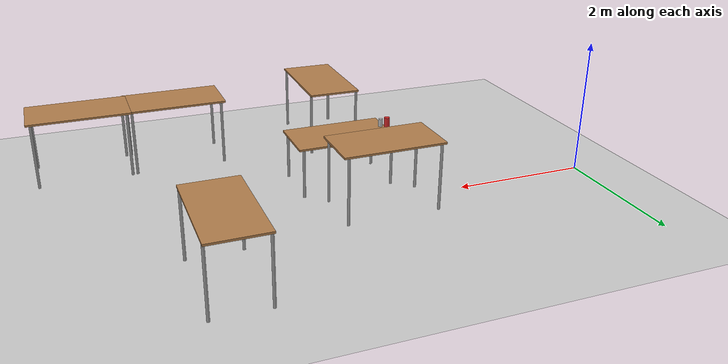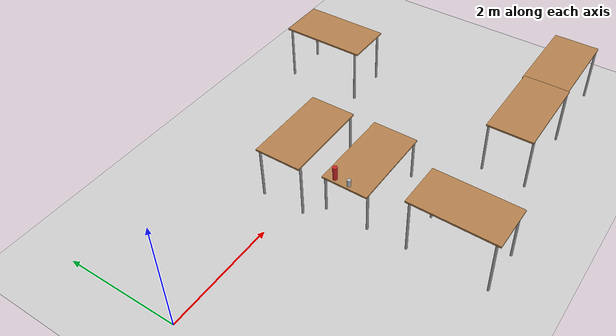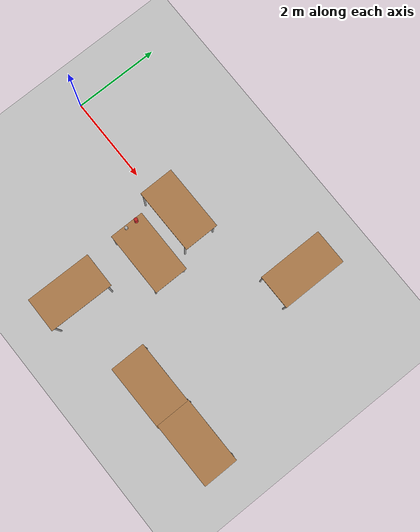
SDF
<sdf version="1.6">
 <world name="default">
  <model name="ground_plane">
   <static>1</static>
   <link name="link">
    <collision name="collision">
     <geometry><plane><normal>0 0 1</normal><size>100 100</size></plane></geometry>
     <surface><friction><ode><mu>100</mu><mu2>50</mu2></ode></friction></surface>
    </collision>
    <visual name="visual">
     <cast_shadows>0</cast_shadows>
     <geometry><plane><normal>0 0 1</normal><size>100 100</size></plane></geometry>
     <material>
      <script><uri>file://media/materials/scripts/gazebo.material</uri><name>Gazebo/Grey</name></script>
     </material>
    </visual>
   </link>
  </model>
  <model name="table_clone_0">
   <static>1</static>
   <link name="link">
    <collision name="surface">
     <pose>0 0 1 0 -0 0</pose>
     <geometry><box><size>1.5 0.8 0.03</size></box></geometry>
     <surface><friction><ode><mu>0.6</mu><mu2>0.6</mu2></ode></friction></surface>
    </collision>
    <visual name="visual1">
     <pose>0 0 1 0 -0 0</pose>
     <geometry><box><size>1.5 0.8 0.03</size></box></geometry>
     <material>
      <script><uri>file://media/materials/scripts/gazebo.material</uri><name>Gazebo/Wood</name></script>
     </material>
    </visual>
    <collision name="front_left_leg">
     <pose>0.68 0.38 0.5 0 -0 0</pose>
     <geometry><cylinder><radius>0.02</radius><length>1</length></cylinder></geometry>
    </collision>
    <visual name="front_left_leg">
     <pose>0.68 0.38 0.5 0 -0 0</pose>
     <geometry><cylinder><radius>0.02</radius><length>1</length></cylinder></geometry>
     <material>
      <script><uri>file://media/materials/scripts/gazebo.material</uri><name>Gazebo/Grey</name></script>
     </material>
    </visual>
    <collision name="front_right_leg">
     <pose>0.68 -0.38 0.5 0 -0 0</pose>
     <geometry><cylinder><radius>0.02</radius><length>1</length></cylinder></geometry>
    </collision>
    <visual name="front_right_leg">
     <pose>0.68 -0.38 0.5 0 -0 0</pose>
     <geometry><cylinder><radius>0.02</radius><length>1</length></cylinder></geometry>
     <material>
      <script><uri>file://media/materials/scripts/gazebo.material</uri><name>Gazebo/Grey</name></script>
     </material>
    </visual>
    <collision name="back_right_leg">
     <pose>-0.68 -0.38 0.5 0 -0 0</pose>
     <geometry><cylinder><radius>0.02</radius><length>1</length></cylinder></geometry>
    </collision>
    <visual name="back_right_leg">
     <pose>-0.68 -0.38 0.5 0 -0 0</pose>
     <geometry><cylinder><radius>0.02</radius><length>1</length></cylinder></geometry>
     <material>
      <script><uri>file://media/materials/scripts/gazebo.material</uri><name>Gazebo/Grey</name></script>
     </material>
    </visual>
    <collision name="back_left_leg">
     <pose>-0.68 0.38 0.5 0 -0 0</pose>
     <geometry><cylinder><radius>0.02</radius><length>1</length></cylinder></geometry>
    </collision>
    <visual name="back_left_leg">
     <pose>-0.68 0.38 0.5 0 -0 0</pose>
     <geometry><cylinder><radius>0.02</radius><length>1</length></cylinder></geometry>
     <material>
      <script><uri>file://media/materials/scripts/gazebo.material</uri><name>Gazebo/Grey</name></script>
     </material>
    </visual>
   </link>
   <pose>3.32196 0.119027 0 0 0 -3.13587</pose>
  </model>
  <model name="table_clone_0_clone">
   <static>1</static>
   <link name="link">
    <collision name="surface">
     <pose>0 0 1 0 -0 0</pose>
     <geometry><box><size>1.5 0.8 0.03</size></box></geometry>
     <surface><friction><ode><mu>0.6</mu><mu2>0.6</mu2></ode></friction></surface>
    </collision>
    <visual name="visual1">
     <pose>0 0 1 0 -0 0</pose>
     <geometry><box><size>1.5 0.8 0.03</size></box></geometry>
     <material>
      <script><uri>file://media/materials/scripts/gazebo.material</uri><name>Gazebo/Wood</name></script>
     </material>
    </visual>
    <collision name="front_left_leg">
     <pose>0.68 0.38 0.5 0 -0 0</pose>
     <geometry><cylinder><radius>0.02</radius><length>1</length></cylinder></geometry>
    </collision>
    <visual name="front_left_leg">
     <pose>0.68 0.38 0.5 0 -0 0</pose>
     <geometry><cylinder><radius>0.02</radius><length>1</length></cylinder></geometry>
     <material>
      <script><uri>file://media/materials/scripts/gazebo.material</uri><name>Gazebo/Grey</name></script>
     </material>
    </visual>
    <collision name="front_right_leg">
     <pose>0.68 -0.38 0.5 0 -0 0</pose>
     <geometry><cylinder><radius>0.02</radius><length>1</length></cylinder></geometry>
    </collision>
    <visual name="front_right_leg">
     <pose>0.68 -0.38 0.5 0 -0 0</pose>
     <geometry><cylinder><radius>0.02</radius><length>1</length></cylinder></geometry>
     <material>
      <script><uri>file://media/materials/scripts/gazebo.material</uri><name>Gazebo/Grey</name></script>
     </material>
    </visual>
    <collision name="back_right_leg">
     <pose>-0.68 -0.38 0.5 0 -0 0</pose>
     <geometry><cylinder><radius>0.02</radius><length>1</length></cylinder></geometry>
    </collision>
    <visual name="back_right_leg">
     <pose>-0.68 -0.38 0.5 0 -0 0</pose>
     <geometry><cylinder><radius>0.02</radius><length>1</length></cylinder></geometry>
     <material>
      <script><uri>file://media/materials/scripts/gazebo.material</uri><name>Gazebo/Grey</name></script>
     </material>
    </visual>
    <collision name="back_left_leg">
     <pose>-0.68 0.38 0.5 0 -0 0</pose>
     <geometry><cylinder><radius>0.02</radius><length>1</length></cylinder></geometry>
    </collision>
    <visual name="back_left_leg">
     <pose>-0.68 0.38 0.5 0 -0 0</pose>
     <geometry><cylinder><radius>0.02</radius><length>1</length></cylinder></geometry>
     <material>
      <script><uri>file://media/materials/scripts/gazebo.material</uri><name>Gazebo/Grey</name></script>
     </material>
    </visual>
   </link>
   <pose>5.85461 1.30553 0 0 -0 1.57373</pose>
  </model>
  <model name="table_clone_0_clone_0">
   <static>1</static>
   <link name="link">
    <collision name="surface">
     <pose>0 0 1 0 -0 0</pose>
     <geometry><box><size>1.5 0.8 0.03</size></box></geometry>
     <surface><friction><ode><mu>0.6</mu><mu2>0.6</mu2></ode></friction></surface>
    </collision>
    <visual name="visual1">
     <pose>0 0 1 0 -0 0</pose>
     <geometry><box><size>1.5 0.8 0.03</size></box></geometry>
     <material>
      <script><uri>file://media/materials/scripts/gazebo.material</uri><name>Gazebo/Wood</name></script>
     </material>
    </visual>
    <collision name="front_left_leg">
     <pose>0.68 0.38 0.5 0 -0 0</pose>
     <geometry><cylinder><radius>0.02</radius><length>1</length></cylinder></geometry>
    </collision>
    <visual name="front_left_leg">
     <pose>0.68 0.38 0.5 0 -0 0</pose>
     <geometry><cylinder><radius>0.02</radius><length>1</length></cylinder></geometry>
     <material>
      <script><uri>file://media/materials/scripts/gazebo.material</uri><name>Gazebo/Grey</name></script>
     </material>
    </visual>
    <collision name="front_right_leg">
     <pose>0.68 -0.38 0.5 0 -0 0</pose>
     <geometry><cylinder><radius>0.02</radius><length>1</length></cylinder></geometry>
    </collision>
    <visual name="front_right_leg">
     <pose>0.68 -0.38 0.5 0 -0 0</pose>
     <geometry><cylinder><radius>0.02</radius><length>1</length></cylinder></geometry>
     <material>
      <script><uri>file://media/materials/scripts/gazebo.material</uri><name>Gazebo/Grey</name></script>
     </material>
    </visual>
    <collision name="back_right_leg">
     <pose>-0.68 -0.38 0.5 0 -0 0</pose>
     <geometry><cylinder><radius>0.02</radius><length>1</length></cylinder></geometry>
    </collision>
    <visual name="back_right_leg">
     <pose>-0.68 -0.38 0.5 0 -0 0</pose>
     <geometry><cylinder><radius>0.02</radius><length>1</length></cylinder></geometry>
     <material>
      <script><uri>file://media/materials/scripts/gazebo.material</uri><name>Gazebo/Grey</name></script>
     </material>
    </visual>
    <collision name="back_left_leg">
     <pose>-0.68 0.38 0.5 0 -0 0</pose>
     <geometry><cylinder><radius>0.02</radius><length>1</length></cylinder></geometry>
    </collision>
    <visual name="back_left_leg">
     <pose>-0.68 0.38 0.5 0 -0 0</pose>
     <geometry><cylinder><radius>0.02</radius><length>1</length></cylinder></geometry>
     <material>
      <script><uri>file://media/materials/scripts/gazebo.material</uri><name>Gazebo/Grey</name></script>
     </material>
    </visual>
   </link>
   <pose>5.76753 -2.54254 0 0 0 -3.13587</pose>
  </model>
  <model name="table_clone_0_clone_0_clone">
   <static>1</static>
   <link name="link">
    <collision name="surface">
     <pose>0 0 1 0 -0 0</pose>
     <geometry><box><size>1.5 0.8 0.03</size></box></geometry>
     <surface><friction><ode><mu>0.6</mu><mu2>0.6</mu2></ode></friction></surface>
    </collision>
    <visual name="visual1">
     <pose>0 0 1 0 -0 0</pose>
     <geometry><box><size>1.5 0.8 0.03</size></box></geometry>
     <material>
      <script><uri>file://media/materials/scripts/gazebo.material</uri><name>Gazebo/Wood</name></script>
     </material>
    </visual>
    <collision name="front_left_leg">
     <pose>0.68 0.38 0.5 0 -0 0</pose>
     <geometry><cylinder><radius>0.02</radius><length>1</length></cylinder></geometry>
    </collision>
    <visual name="front_left_leg">
     <pose>0.68 0.38 0.5 0 -0 0</pose>
     <geometry><cylinder><radius>0.02</radius><length>1</length></cylinder></geometry>
     <material>
      <script><uri>file://media/materials/scripts/gazebo.material</uri><name>Gazebo/Grey</name></script>
     </material>
    </visual>
    <collision name="front_right_leg">
     <pose>0.68 -0.38 0.5 0 -0 0</pose>
     <geometry><cylinder><radius>0.02</radius><length>1</length></cylinder></geometry>
    </collision>
    <visual name="front_right_leg">
     <pose>0.68 -0.38 0.5 0 -0 0</pose>
     <geometry><cylinder><radius>0.02</radius><length>1</length></cylinder></geometry>
     <material>
      <script><uri>file://media/materials/scripts/gazebo.material</uri><name>Gazebo/Grey</name></script>
     </material>
    </visual>
    <collision name="back_right_leg">
     <pose>-0.68 -0.38 0.5 0 -0 0</pose>
     <geometry><cylinder><radius>0.02</radius><length>1</length></cylinder></geometry>
    </collision>
    <visual name="back_right_leg">
     <pose>-0.68 -0.38 0.5 0 -0 0</pose>
     <geometry><cylinder><radius>0.02</radius><length>1</length></cylinder></geometry>
     <material>
      <script><uri>file://media/materials/scripts/gazebo.material</uri><name>Gazebo/Grey</name></script>
     </material>
    </visual>
    <collision name="back_left_leg">
     <pose>-0.68 0.38 0.5 0 -0 0</pose>
     <geometry><cylinder><radius>0.02</radius><length>1</length></cylinder></geometry>
    </collision>
    <visual name="back_left_leg">
     <pose>-0.68 0.38 0.5 0 -0 0</pose>
     <geometry><cylinder><radius>0.02</radius><length>1</length></cylinder></geometry>
     <material>
      <script><uri>file://media/materials/scripts/gazebo.material</uri><name>Gazebo/Grey</name></script>
     </material>
    </visual>
   </link>
   <pose>7.20338 -2.51858 0 0 0 -3.13587</pose>
  </model>
  <model name="table_clone_1">
   <static>1</static>
   <link name="link">
    <collision name="surface">
     <pose>0 0 1 0 -0 0</pose>
     <geometry><box><size>1.5 0.8 0.03</size></box></geometry>
     <surface><friction><ode><mu>0.6</mu><mu2>0.6</mu2></ode></friction></surface>
    </collision>
    <visual name="visual1">
     <pose>0 0 1 0 -0 0</pose>
     <geometry><box><size>1.5 0.8 0.03</size></box></geometry>
     <material>
      <script><uri>file://media/materials/scripts/gazebo.material</uri><name>Gazebo/Wood</name></script>
     </material>
    </visual>
    <collision name="front_left_leg">
     <pose>0.68 0.38 0.5 0 -0 0</pose>
     <geometry><cylinder><radius>0.02</radius><length>1</length></cylinder></geometry>
    </collision>
    <visual name="front_left_leg">
     <pose>0.68 0.38 0.5 0 -0 0</pose>
     <geometry><cylinder><radius>0.02</radius><length>1</length></cylinder></geometry>
     <material>
      <script><uri>file://media/materials/scripts/gazebo.material</uri><name>Gazebo/Grey</name></script>
     </material>
    </visual>
    <collision name="front_right_leg">
     <pose>0.68 -0.38 0.5 0 -0 0</pose>
     <geometry><cylinder><radius>0.02</radius><length>1</length></cylinder></geometry>
    </collision>
    <visual name="front_right_leg">
     <pose>0.68 -0.38 0.5 0 -0 0</pose>
     <geometry><cylinder><radius>0.02</radius><length>1</length></cylinder></geometry>
     <material>
      <script><uri>file://media/materials/scripts/gazebo.material</uri><name>Gazebo/Grey</name></script>
     </material>
    </visual>
    <collision name="back_right_leg">
     <pose>-0.68 -0.38 0.5 0 -0 0</pose>
     <geometry><cylinder><radius>0.02</radius><length>1</length></cylinder></geometry>
    </collision>
    <visual name="back_right_leg">
     <pose>-0.68 -0.38 0.5 0 -0 0</pose>
     <geometry><cylinder><radius>0.02</radius><length>1</length></cylinder></geometry>
     <material>
      <script><uri>file://media/materials/scripts/gazebo.material</uri><name>Gazebo/Grey</name></script>
     </material>
    </visual>
    <collision name="back_left_leg">
     <pose>-0.68 0.38 0.5 0 -0 0</pose>
     <geometry><cylinder><radius>0.02</radius><length>1</length></cylinder></geometry>
    </collision>
    <visual name="back_left_leg">
     <pose>-0.68 0.38 0.5 0 -0 0</pose>
     <geometry><cylinder><radius>0.02</radius><length>1</length></cylinder></geometry>
     <material>
      <script><uri>file://media/materials/scripts/gazebo.material</uri><name>Gazebo/Grey</name></script>
     </material>
    </visual>
   </link>
   <pose>3.28341 -2.66037 0 0 0 -1.58073</pose>
  </model>
  <model name="table_0">
   <static>1</static>
   <link name="link">
    <collision name="surface">
     <pose>0 0 1 0 -0 0</pose>
     <geometry><box><size>1.5 0.8 0.03</size></box></geometry>
     <surface><friction><ode><mu>0.6</mu><mu2>0.6</mu2></ode></friction></surface>
    </collision>
    <visual name="visual1">
     <pose>0 0 1 0 -0 0</pose>
     <geometry><box><size>1.5 0.8 0.03</size></box></geometry>
     <material>
      <script><uri>file://media/materials/scripts/gazebo.material</uri><name>Gazebo/Wood</name></script>
     </material>
    </visual>
    <collision name="front_left_leg">
     <pose>0.68 0.38 0.5 0 -0 0</pose>
     <geometry><cylinder><radius>0.02</radius><length>1</length></cylinder></geometry>
    </collision>
    <visual name="front_left_leg">
     <pose>0.68 0.38 0.5 0 -0 0</pose>
     <geometry><cylinder><radius>0.02</radius><length>1</length></cylinder></geometry>
     <material>
      <script><uri>file://media/materials/scripts/gazebo.material</uri><name>Gazebo/Grey</name></script>
     </material>
    </visual>
    <collision name="front_right_leg">
     <pose>0.68 -0.38 0.5 0 -0 0</pose>
     <geometry><cylinder><radius>0.02</radius><length>1</length></cylinder></geometry>
    </collision>
    <visual name="front_right_leg">
     <pose>0.68 -0.38 0.5 0 -0 0</pose>
     <geometry><cylinder><radius>0.02</radius><length>1</length></cylinder></geometry>
     <material>
      <script><uri>file://media/materials/scripts/gazebo.material</uri><name>Gazebo/Grey</name></script>
     </material>
    </visual>
    <collision name="back_right_leg">
     <pose>-0.68 -0.38 0.5 0 -0 0</pose>
     <geometry><cylinder><radius>0.02</radius><length>1</length></cylinder></geometry>
    </collision>
    <visual name="back_right_leg">
     <pose>-0.68 -0.38 0.5 0 -0 0</pose>
     <geometry><cylinder><radius>0.02</radius><length>1</length></cylinder></geometry>
     <material>
      <script><uri>file://media/materials/scripts/gazebo.material</uri><name>Gazebo/Grey</name></script>
     </material>
    </visual>
    <collision name="back_left_leg">
     <pose>-0.68 0.38 0.5 0 -0 0</pose>
     <geometry><cylinder><radius>0.02</radius><length>1</length></cylinder></geometry>
    </collision>
    <visual name="back_left_leg">
     <pose>-0.68 0.38 0.5 0 -0 0</pose>
     <geometry><cylinder><radius>0.02</radius><length>1</length></cylinder></geometry>
     <material>
      <script><uri>file://media/materials/scripts/gazebo.material</uri><name>Gazebo/Grey</name></script>
     </material>
    </visual>
   </link>
   <pose>3.60425 -0.896591 -0.262485 0 -0 0</pose>
  </model>
  <model name="cocacola">
   <pose>2.92005 -0.945951 0.813077 0 -0 0</pose>
   <link name="link">
    <inertial>
     <mass>0.39</mass>
     <inertia><ixx>0.00058</ixx><ixy>0</ixy><ixz>0</ixz><iyy>0.00058</iyy><iyz>0</iyz><izz>0.00019</izz></inertia>
    </inertial>
    <collision name="collision">
     <geometry><cylinder><radius>0.03302</radius><length>0.12268</length></cylinder></geometry>
     <surface>
      <contact><ode><min_depth>0.005</min_depth></ode></contact>
      <friction><ode><mu>0.9</mu><mu2>0.9</mu2></ode></friction>
     </surface>
    </collision>
    <visual name="visual">
     <geometry><cylinder><radius>0.03302</radius><length>0.12268</length></cylinder></geometry>
     <material>
      <script>
       <uri>model://cocacola/materials/scripts</uri>
       <uri>model://cocacola/materials/textures</uri>
       <name>CocaCola/Diffuse</name>
      </script>
     </material>
    </visual>
   </link>
  </model>
  <model name="pringles_red_0">
   <pose>2.93125 -0.690709 0.869841 1.8e-05 5.8e-05 1.59212</pose>
   <link name="link">
    <inertial>
     <mass>0.2</mass>
     <inertia>
      <ixx>0.000908</ixx>
      <ixy>0</ixy>
      <ixz>0</ixz>
      <iyy>0.000908</iyy>
      <iyz>0</iyz>
      <izz>0.0002025</izz>
     </inertia>
    </inertial>
    <collision name="collision">
     <geometry><cylinder><radius>0.04</radius><length>0.235</length></cylinder></geometry>
     <surface>
      <contact><ode><min_depth>0.005</min_depth></ode></contact>
      <friction><ode><mu>0.9</mu><mu2>0.9</mu2></ode></friction>
     </surface>
    </collision>
    <visual name="visual">
     <pose>0 0 0 3.1415 -0 0</pose>
     <geometry><cylinder><radius>0.04</radius><length>0.235</length></cylinder></geometry>
     <material>
      <script>
       <uri>model://pringles_red/material/scripts</uri>
       <uri>model://pringles_red/material/textures</uri>
       <name>Custom/PringlesRed</name>
      </script>
     </material>
    </visual>
   </link>
  </model>
 </world>
</sdf>
